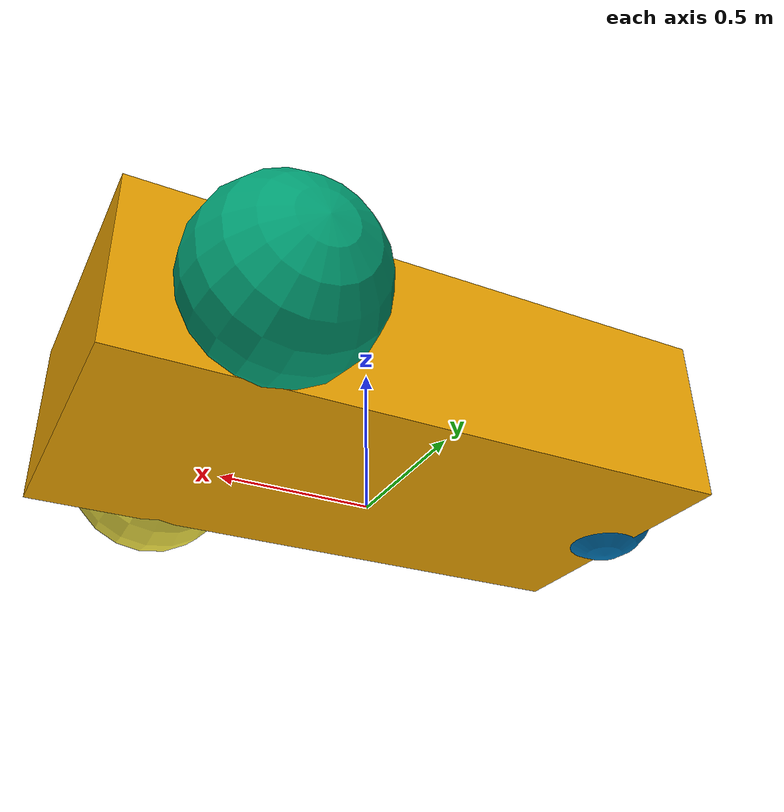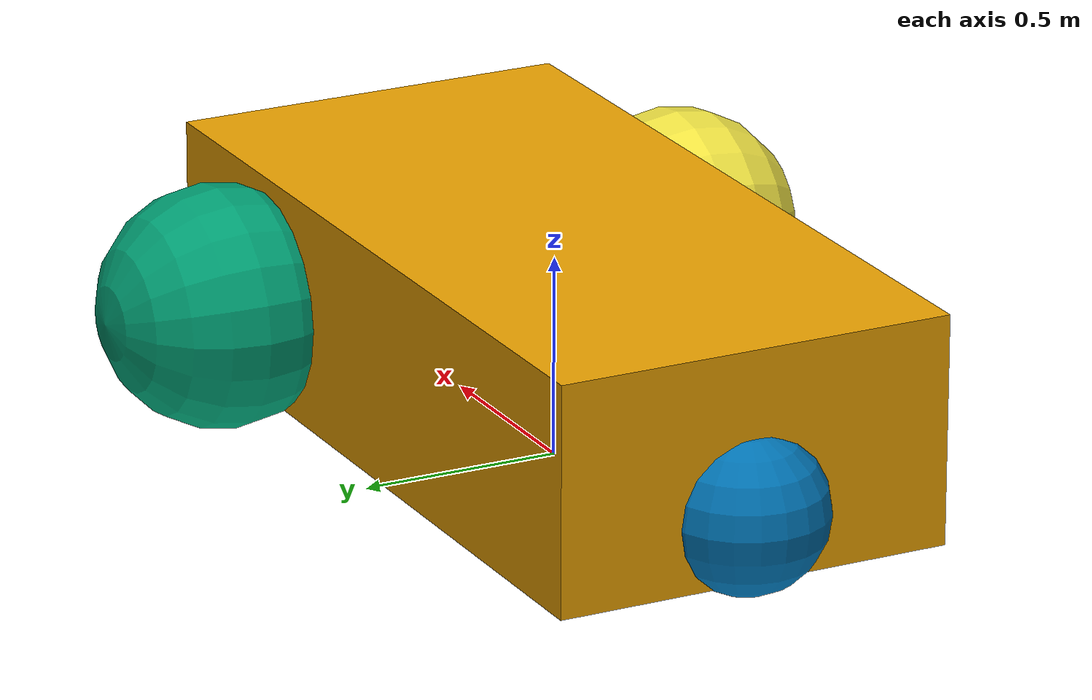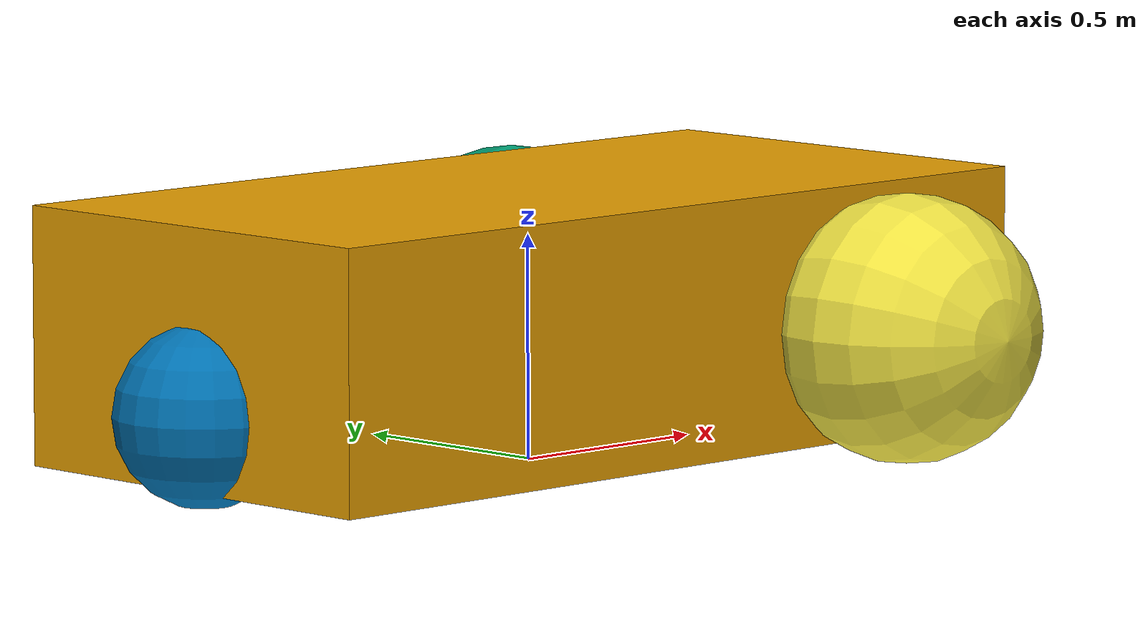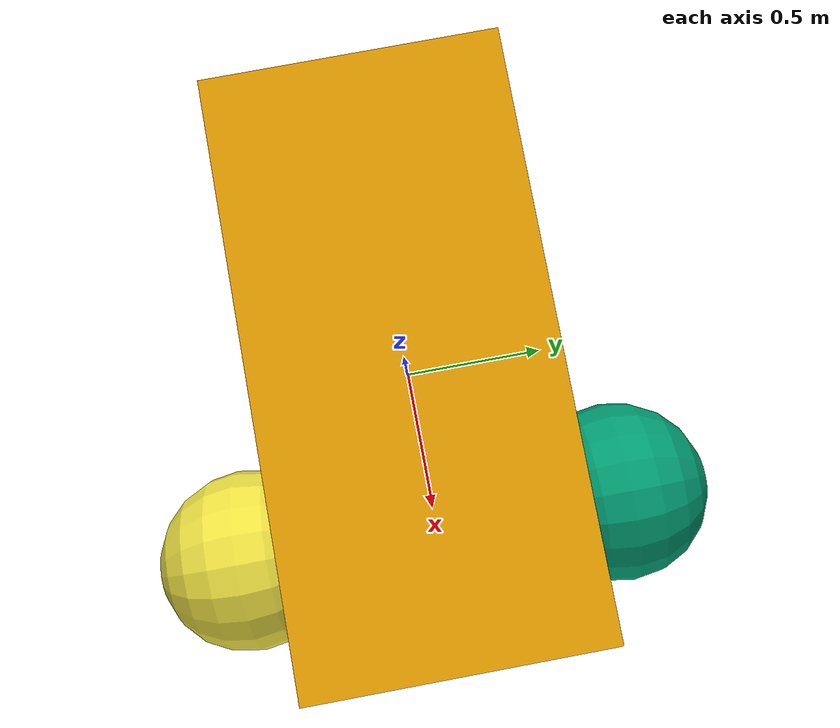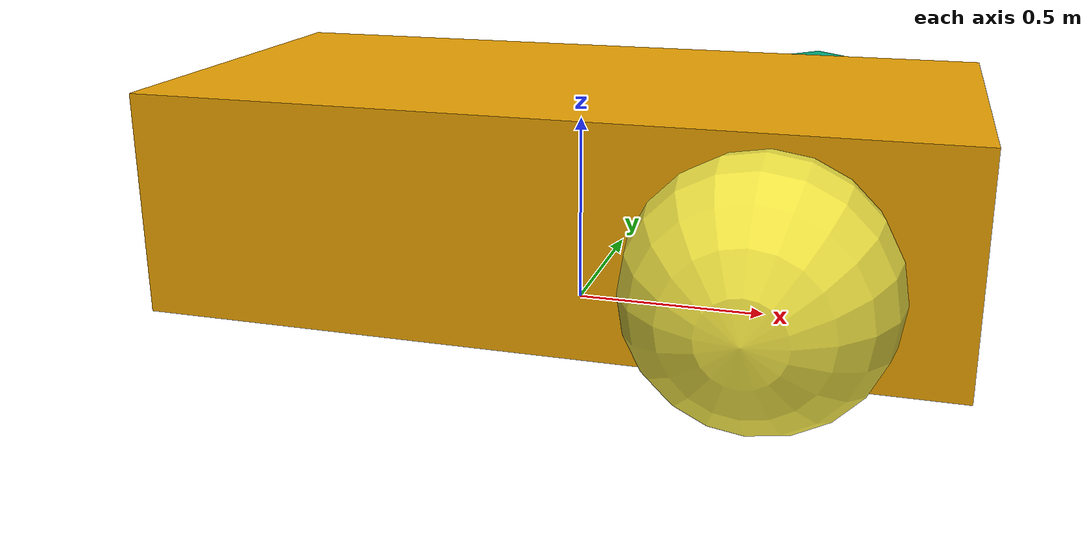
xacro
<?xml version="1.0" ?>
<robot name="vehicle_blue"
  xmlns:xacro="http://ros.org/wiki/xacro">

  <link name='vehicle_blue/chassis'>
    <visual name='visual'>
      <origin xyz="0 0 0.325" rpy="0 0 0"/>
      <geometry>
        <box size="2.01142 1 0.568726"/>
      </geometry>
    </visual>
  </link>
  <link name="vehicle_blue/lidar_link/gpu_lidar">
    <visual name="visual">
      <geometry>
        <box size="0.1 0.1 0.1"/>
      </geometry>
    </visual>
  </link>

  <link name='left_wheel'>
    <visual name='visual'>
      <geometry>
        <sphere radius="0.3"/>
      </geometry>
    </visual>
  </link>

  <link name='right_wheel'>
    <visual name='visual'>
      <geometry>
        <sphere radius="0.3"/>
      </geometry>
    </visual>
  </link>

  <link name='caster'>
    <visual name='visual'>
      <geometry>
        <sphere radius="0.2"/>
      </geometry>
    </visual>
  </link>

  <joint name="lidar_sensor_joint" type="fixed">
    <parent link="vehicle_blue/chassis"/>
    <child link="vehicle_blue/lidar_link/gpu_lidar"/>
    <origin xyz="0 0 0.5" rpy="0 0 0"/>
  </joint>
  <joint name="left_wheel_joint" type="fixed">
    <parent link="vehicle_blue/chassis"/>
    <child link="left_wheel"/>
    <origin xyz="0.554283 0.625029 0.3" rpy="-1.5707 0 0"/>
  </joint>
  <joint name="right_wheel_joint" type="fixed">
    <parent link="vehicle_blue/chassis"/>
    <child link="right_wheel"/>
    <origin xyz="0.554282 -0.625029 0.3" rpy="-1.5707 0 0"/>
  </joint>
  <joint name="caster_wheel" type="fixed">
    <parent link="vehicle_blue/chassis"/>
    <child link="caster"/>
    <origin xyz="-0.957138 -0 0.2" rpy="0 0 0"/>
  </joint>

</robot>
